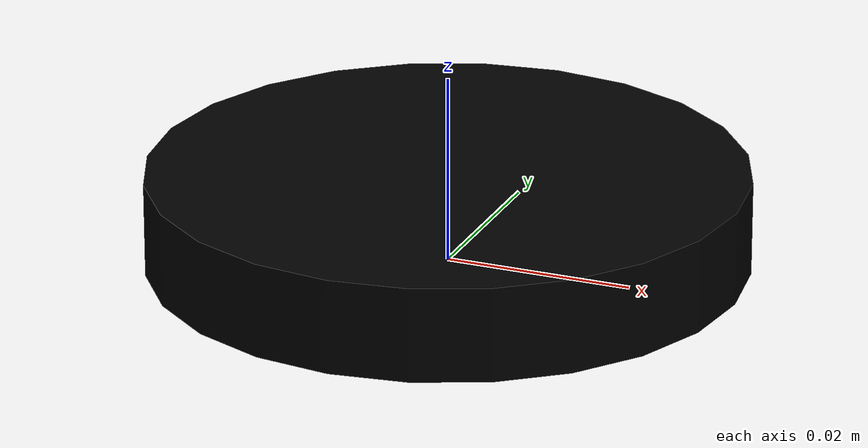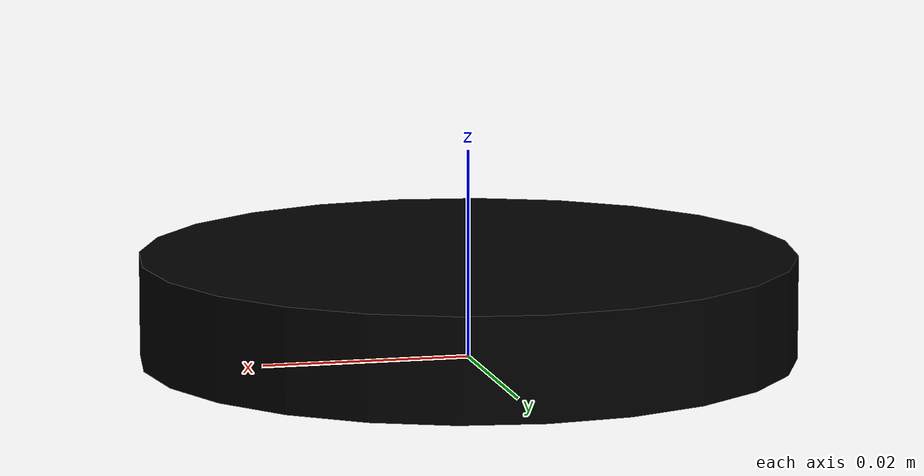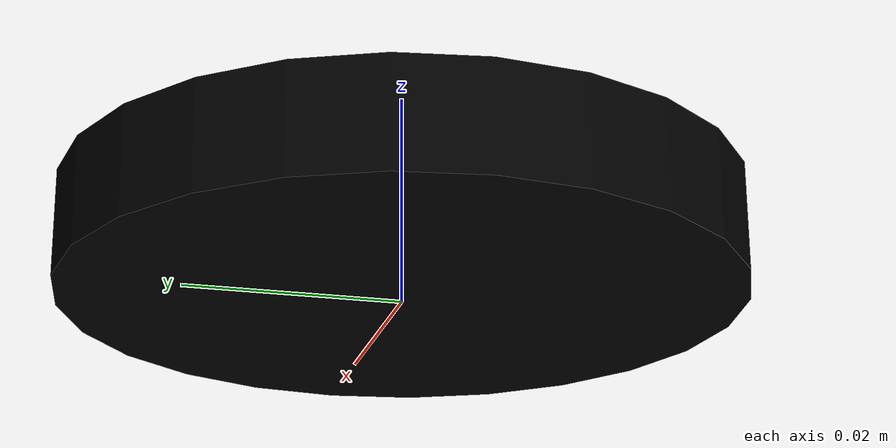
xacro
<?xml version="1.0"?>
<robot name="lwr4_cabling_adaptor">

  <xacro:include filename="$(find iai_adapters_description)/urdf/lwr4_cabling_adaptor.urdf.xacro" />

  <link name="base_link"/>

  <lwr4_cabling_adaptor parent="base_link" prefix="">
    <origin xyz="0 0 0.01" rpy="0 0 0"/>
  </lwr4_cabling_adaptor>

</robot>

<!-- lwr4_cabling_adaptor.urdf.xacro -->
<!-- Many Kuka LWR4s are equipped with a little plate to let the cables go out
     sideways. This is a description of such an adaptor. -->

<robot xmlns:xacro="http://www.ros.org/wiki/xacro" name="lwr4_cabling_adaptor">

  <xacro:macro name="lwr4_cabling_adaptor" params="prefix parent *origin">

    <joint name="${prefix}arm_cabling_adaptor_joint" type="fixed">
      <xacro:insert_block name="origin" />
      <!--origin xyz="0 0 0.01" rpy="0 0 0"/-->  <!-- This places the link at the end of the plate (frame_out) -->
      <parent link="${parent}"/>
      <child link="${prefix}cabling_adaptor_link"/>
    </joint>

    <link name="${prefix}cabling_adaptor_link">
      <visual>
        <origin xyz="0 0 -0.005" rpy="0 0 0" />  <!-- The cylinder is placed at the center -->
        <geometry>
          <cylinder length="0.01" radius="0.0315"/>
        </geometry>
        <material name="Black">
          <color rgba="0 0 0 1.0"/>
        </material>
      </visual>
    </link>

  </xacro:macro>
</robot>
